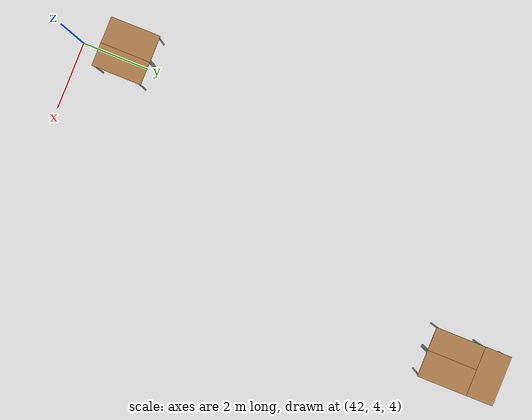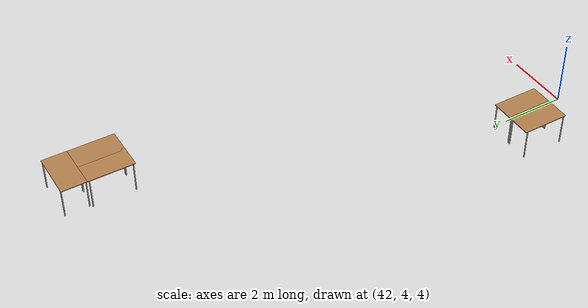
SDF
<sdf version="1.7">
 <world name="default">
  <model name="table">
   <static>1</static>
   <link name="link">
    <collision name="surface">
     <pose>0 0 1 0 -0 0</pose>
     <geometry><box><size>1.5 0.8 0.03</size></box></geometry>
     <surface><friction><ode><mu>0.6</mu><mu2>0.6</mu2></ode></friction></surface>
    </collision>
    <visual name="visual1">
     <pose>0 0 1 0 -0 0</pose>
     <geometry><box><size>1.5 0.8 0.03</size></box></geometry>
     <material>
      <script><uri>file://media/materials/scripts/gazebo.material</uri><name>Gazebo/Wood</name></script>
     </material>
    </visual>
    <collision name="front_left_leg">
     <pose>0.68 0.38 0.5 0 -0 0</pose>
     <geometry><cylinder><radius>0.02</radius><length>1</length></cylinder></geometry>
    </collision>
    <visual name="front_left_leg">
     <pose>0.68 0.38 0.5 0 -0 0</pose>
     <geometry><cylinder><radius>0.02</radius><length>1</length></cylinder></geometry>
     <material>
      <script><uri>file://media/materials/scripts/gazebo.material</uri><name>Gazebo/Grey</name></script>
     </material>
    </visual>
    <collision name="front_right_leg">
     <pose>0.68 -0.38 0.5 0 -0 0</pose>
     <geometry><cylinder><radius>0.02</radius><length>1</length></cylinder></geometry>
    </collision>
    <visual name="front_right_leg">
     <pose>0.68 -0.38 0.5 0 -0 0</pose>
     <geometry><cylinder><radius>0.02</radius><length>1</length></cylinder></geometry>
     <material>
      <script><uri>file://media/materials/scripts/gazebo.material</uri><name>Gazebo/Grey</name></script>
     </material>
    </visual>
    <collision name="back_right_leg">
     <pose>-0.68 -0.38 0.5 0 -0 0</pose>
     <geometry><cylinder><radius>0.02</radius><length>1</length></cylinder></geometry>
    </collision>
    <visual name="back_right_leg">
     <pose>-0.68 -0.38 0.5 0 -0 0</pose>
     <geometry><cylinder><radius>0.02</radius><length>1</length></cylinder></geometry>
     <material>
      <script><uri>file://media/materials/scripts/gazebo.material</uri><name>Gazebo/Grey</name></script>
     </material>
    </visual>
    <collision name="back_left_leg">
     <pose>-0.68 0.38 0.5 0 -0 0</pose>
     <geometry><cylinder><radius>0.02</radius><length>1</length></cylinder></geometry>
    </collision>
    <visual name="back_left_leg">
     <pose>-0.68 0.38 0.5 0 -0 0</pose>
     <geometry><cylinder><radius>0.02</radius><length>1</length></cylinder></geometry>
     <material>
      <script><uri>file://media/materials/scripts/gazebo.material</uri><name>Gazebo/Grey</name></script>
     </material>
    </visual>
   </link>
   <pose>46.8852 17.201 3.25592 0 0 -1.5708</pose>
  </model>
  <model name="table_clone_0">
   <static>1</static>
   <link name="link">
    <collision name="surface">
     <pose>0 0 1 0 -0 0</pose>
     <geometry><box><size>1.5 0.8 0.03</size></box></geometry>
     <surface><friction><ode><mu>0.6</mu><mu2>0.6</mu2></ode></friction></surface>
    </collision>
    <visual name="visual1">
     <pose>0 0 1 0 -0 0</pose>
     <geometry><box><size>1.5 0.8 0.03</size></box></geometry>
     <material>
      <script><uri>file://media/materials/scripts/gazebo.material</uri><name>Gazebo/Wood</name></script>
     </material>
    </visual>
    <collision name="front_left_leg">
     <pose>0.68 0.38 0.5 0 -0 0</pose>
     <geometry><cylinder><radius>0.02</radius><length>1</length></cylinder></geometry>
    </collision>
    <visual name="front_left_leg">
     <pose>0.68 0.38 0.5 0 -0 0</pose>
     <geometry><cylinder><radius>0.02</radius><length>1</length></cylinder></geometry>
     <material>
      <script><uri>file://media/materials/scripts/gazebo.material</uri><name>Gazebo/Grey</name></script>
     </material>
    </visual>
    <collision name="front_right_leg">
     <pose>0.68 -0.38 0.5 0 -0 0</pose>
     <geometry><cylinder><radius>0.02</radius><length>1</length></cylinder></geometry>
    </collision>
    <visual name="front_right_leg">
     <pose>0.68 -0.38 0.5 0 -0 0</pose>
     <geometry><cylinder><radius>0.02</radius><length>1</length></cylinder></geometry>
     <material>
      <script><uri>file://media/materials/scripts/gazebo.material</uri><name>Gazebo/Grey</name></script>
     </material>
    </visual>
    <collision name="back_right_leg">
     <pose>-0.68 -0.38 0.5 0 -0 0</pose>
     <geometry><cylinder><radius>0.02</radius><length>1</length></cylinder></geometry>
    </collision>
    <visual name="back_right_leg">
     <pose>-0.68 -0.38 0.5 0 -0 0</pose>
     <geometry><cylinder><radius>0.02</radius><length>1</length></cylinder></geometry>
     <material>
      <script><uri>file://media/materials/scripts/gazebo.material</uri><name>Gazebo/Grey</name></script>
     </material>
    </visual>
    <collision name="back_left_leg">
     <pose>-0.68 0.38 0.5 0 -0 0</pose>
     <geometry><cylinder><radius>0.02</radius><length>1</length></cylinder></geometry>
    </collision>
    <visual name="back_left_leg">
     <pose>-0.68 0.38 0.5 0 -0 0</pose>
     <geometry><cylinder><radius>0.02</radius><length>1</length></cylinder></geometry>
     <material>
      <script><uri>file://media/materials/scripts/gazebo.material</uri><name>Gazebo/Grey</name></script>
     </material>
    </visual>
   </link>
   <pose>41.4344 5.30106 3.28563 0 0 -1.5708</pose>
  </model>
  <model name="table_clone_0_clone">
   <static>1</static>
   <link name="link">
    <collision name="surface">
     <pose>0 0 1 0 -0 0</pose>
     <geometry><box><size>1.5 0.8 0.03</size></box></geometry>
     <surface><friction><ode><mu>0.6</mu><mu2>0.6</mu2></ode></friction></surface>
    </collision>
    <visual name="visual1">
     <pose>0 0 1 0 -0 0</pose>
     <geometry><box><size>1.5 0.8 0.03</size></box></geometry>
     <material>
      <script><uri>file://media/materials/scripts/gazebo.material</uri><name>Gazebo/Wood</name></script>
     </material>
    </visual>
    <collision name="front_left_leg">
     <pose>0.68 0.38 0.5 0 -0 0</pose>
     <geometry><cylinder><radius>0.02</radius><length>1</length></cylinder></geometry>
    </collision>
    <visual name="front_left_leg">
     <pose>0.68 0.38 0.5 0 -0 0</pose>
     <geometry><cylinder><radius>0.02</radius><length>1</length></cylinder></geometry>
     <material>
      <script><uri>file://media/materials/scripts/gazebo.material</uri><name>Gazebo/Grey</name></script>
     </material>
    </visual>
    <collision name="front_right_leg">
     <pose>0.68 -0.38 0.5 0 -0 0</pose>
     <geometry><cylinder><radius>0.02</radius><length>1</length></cylinder></geometry>
    </collision>
    <visual name="front_right_leg">
     <pose>0.68 -0.38 0.5 0 -0 0</pose>
     <geometry><cylinder><radius>0.02</radius><length>1</length></cylinder></geometry>
     <material>
      <script><uri>file://media/materials/scripts/gazebo.material</uri><name>Gazebo/Grey</name></script>
     </material>
    </visual>
    <collision name="back_right_leg">
     <pose>-0.68 -0.38 0.5 0 -0 0</pose>
     <geometry><cylinder><radius>0.02</radius><length>1</length></cylinder></geometry>
    </collision>
    <visual name="back_right_leg">
     <pose>-0.68 -0.38 0.5 0 -0 0</pose>
     <geometry><cylinder><radius>0.02</radius><length>1</length></cylinder></geometry>
     <material>
      <script><uri>file://media/materials/scripts/gazebo.material</uri><name>Gazebo/Grey</name></script>
     </material>
    </visual>
    <collision name="back_left_leg">
     <pose>-0.68 0.38 0.5 0 -0 0</pose>
     <geometry><cylinder><radius>0.02</radius><length>1</length></cylinder></geometry>
    </collision>
    <visual name="back_left_leg">
     <pose>-0.68 0.38 0.5 0 -0 0</pose>
     <geometry><cylinder><radius>0.02</radius><length>1</length></cylinder></geometry>
     <material>
      <script><uri>file://media/materials/scripts/gazebo.material</uri><name>Gazebo/Grey</name></script>
     </material>
    </visual>
   </link>
   <pose>42.1298 5.2983 3.28563 0 0 -1.5708</pose>
  </model>
  <model name="table_clone_clone_clone_0">
   <static>1</static>
   <link name="link">
    <collision name="surface">
     <pose>0 0 1 0 -0 0</pose>
     <geometry><box><size>1.5 0.8 0.03</size></box></geometry>
     <surface><friction><ode><mu>0.6</mu><mu2>0.6</mu2></ode></friction></surface>
    </collision>
    <visual name="visual1">
     <pose>0 0 1 0 -0 0</pose>
     <geometry><box><size>1.5 0.8 0.03</size></box></geometry>
     <material>
      <script><uri>file://media/materials/scripts/gazebo.material</uri><name>Gazebo/Wood</name></script>
     </material>
    </visual>
    <collision name="front_left_leg">
     <pose>0.68 0.38 0.5 0 -0 0</pose>
     <geometry><cylinder><radius>0.02</radius><length>1</length></cylinder></geometry>
    </collision>
    <visual name="front_left_leg">
     <pose>0.68 0.38 0.5 0 -0 0</pose>
     <geometry><cylinder><radius>0.02</radius><length>1</length></cylinder></geometry>
     <material>
      <script><uri>file://media/materials/scripts/gazebo.material</uri><name>Gazebo/Grey</name></script>
     </material>
    </visual>
    <collision name="front_right_leg">
     <pose>0.68 -0.38 0.5 0 -0 0</pose>
     <geometry><cylinder><radius>0.02</radius><length>1</length></cylinder></geometry>
    </collision>
    <visual name="front_right_leg">
     <pose>0.68 -0.38 0.5 0 -0 0</pose>
     <geometry><cylinder><radius>0.02</radius><length>1</length></cylinder></geometry>
     <material>
      <script><uri>file://media/materials/scripts/gazebo.material</uri><name>Gazebo/Grey</name></script>
     </material>
    </visual>
    <collision name="back_right_leg">
     <pose>-0.68 -0.38 0.5 0 -0 0</pose>
     <geometry><cylinder><radius>0.02</radius><length>1</length></cylinder></geometry>
    </collision>
    <visual name="back_right_leg">
     <pose>-0.68 -0.38 0.5 0 -0 0</pose>
     <geometry><cylinder><radius>0.02</radius><length>1</length></cylinder></geometry>
     <material>
      <script><uri>file://media/materials/scripts/gazebo.material</uri><name>Gazebo/Grey</name></script>
     </material>
    </visual>
    <collision name="back_left_leg">
     <pose>-0.68 0.38 0.5 0 -0 0</pose>
     <geometry><cylinder><radius>0.02</radius><length>1</length></cylinder></geometry>
    </collision>
    <visual name="back_left_leg">
     <pose>-0.68 0.38 0.5 0 -0 0</pose>
     <geometry><cylinder><radius>0.02</radius><length>1</length></cylinder></geometry>
     <material>
      <script><uri>file://media/materials/scripts/gazebo.material</uri><name>Gazebo/Grey</name></script>
     </material>
    </visual>
   </link>
   <pose>46.529 18.3459 3.2666 0 -0 0</pose>
  </model>
  <model name="table_clone_1">
   <static>1</static>
   <link name="link">
    <collision name="surface">
     <pose>0 0 1 0 -0 0</pose>
     <geometry><box><size>1.5 0.8 0.03</size></box></geometry>
     <surface><friction><ode><mu>0.6</mu><mu2>0.6</mu2></ode></friction></surface>
    </collision>
    <visual name="visual1">
     <pose>0 0 1 0 -0 0</pose>
     <geometry><box><size>1.5 0.8 0.03</size></box></geometry>
     <material>
      <script><uri>file://media/materials/scripts/gazebo.material</uri><name>Gazebo/Wood</name></script>
     </material>
    </visual>
    <collision name="front_left_leg">
     <pose>0.68 0.38 0.5 0 -0 0</pose>
     <geometry><cylinder><radius>0.02</radius><length>1</length></cylinder></geometry>
    </collision>
    <visual name="front_left_leg">
     <pose>0.68 0.38 0.5 0 -0 0</pose>
     <geometry><cylinder><radius>0.02</radius><length>1</length></cylinder></geometry>
     <material>
      <script><uri>file://media/materials/scripts/gazebo.material</uri><name>Gazebo/Grey</name></script>
     </material>
    </visual>
    <collision name="front_right_leg">
     <pose>0.68 -0.38 0.5 0 -0 0</pose>
     <geometry><cylinder><radius>0.02</radius><length>1</length></cylinder></geometry>
    </collision>
    <visual name="front_right_leg">
     <pose>0.68 -0.38 0.5 0 -0 0</pose>
     <geometry><cylinder><radius>0.02</radius><length>1</length></cylinder></geometry>
     <material>
      <script><uri>file://media/materials/scripts/gazebo.material</uri><name>Gazebo/Grey</name></script>
     </material>
    </visual>
    <collision name="back_right_leg">
     <pose>-0.68 -0.38 0.5 0 -0 0</pose>
     <geometry><cylinder><radius>0.02</radius><length>1</length></cylinder></geometry>
    </collision>
    <visual name="back_right_leg">
     <pose>-0.68 -0.38 0.5 0 -0 0</pose>
     <geometry><cylinder><radius>0.02</radius><length>1</length></cylinder></geometry>
     <material>
      <script><uri>file://media/materials/scripts/gazebo.material</uri><name>Gazebo/Grey</name></script>
     </material>
    </visual>
    <collision name="back_left_leg">
     <pose>-0.68 0.38 0.5 0 -0 0</pose>
     <geometry><cylinder><radius>0.02</radius><length>1</length></cylinder></geometry>
    </collision>
    <visual name="back_left_leg">
     <pose>-0.68 0.38 0.5 0 -0 0</pose>
     <geometry><cylinder><radius>0.02</radius><length>1</length></cylinder></geometry>
     <material>
      <script><uri>file://media/materials/scripts/gazebo.material</uri><name>Gazebo/Grey</name></script>
     </material>
    </visual>
   </link>
   <pose>46.1855 17.1981 3.25592 0 0 -1.5708</pose>
  </model>
 </world>
</sdf>
